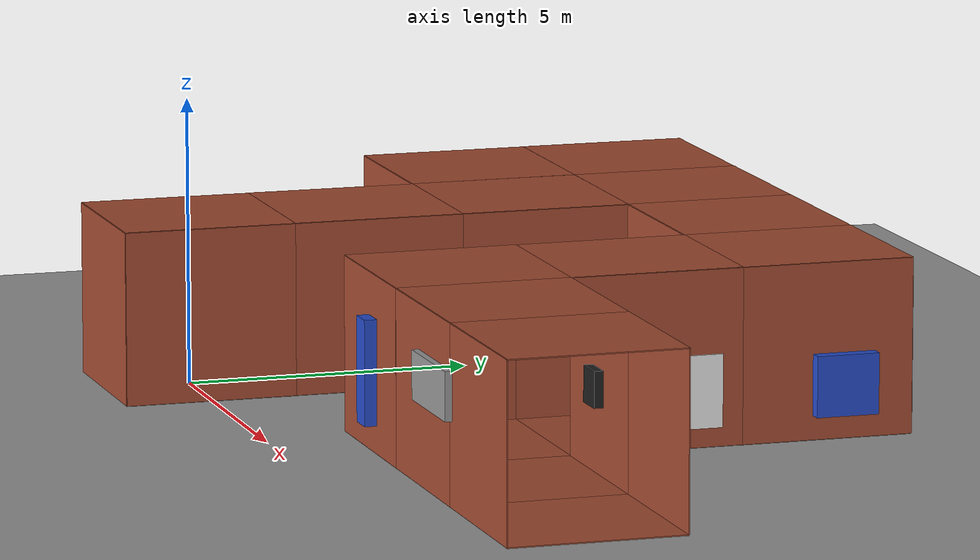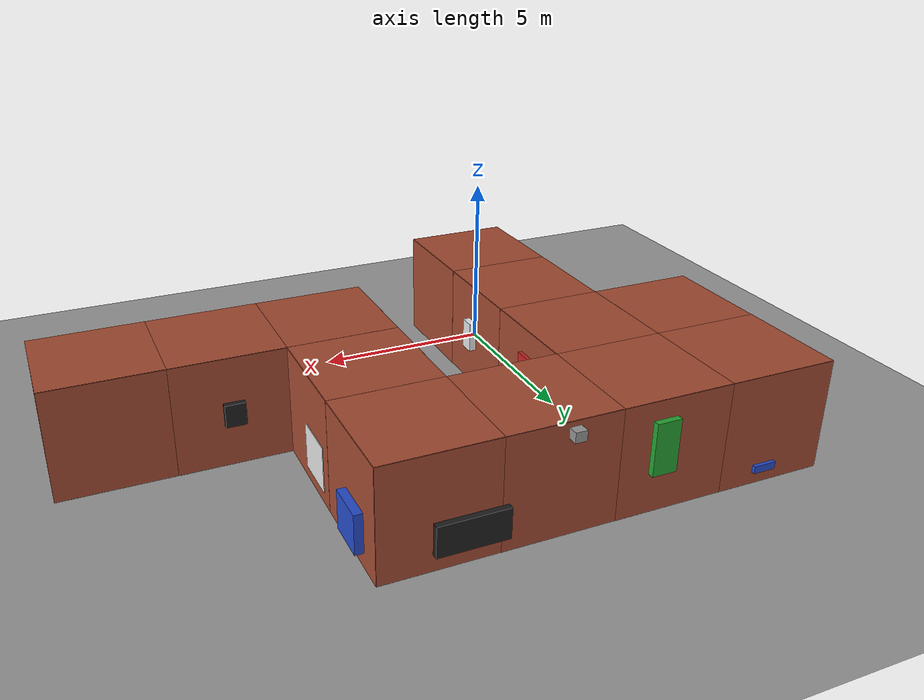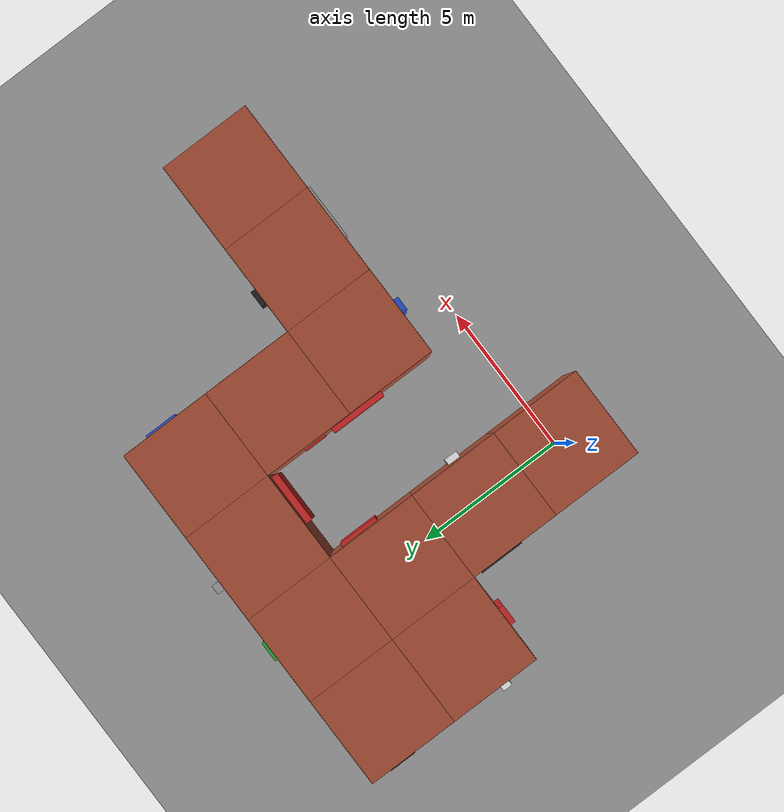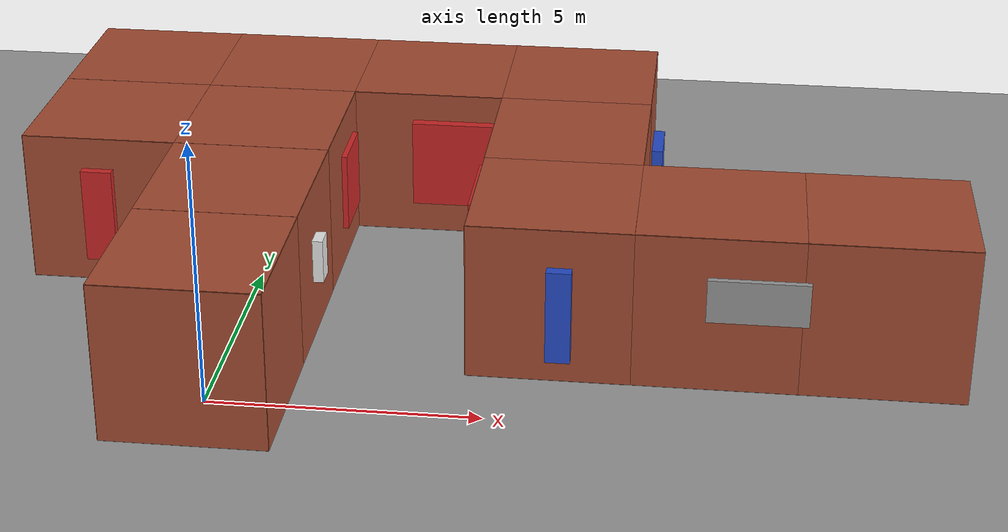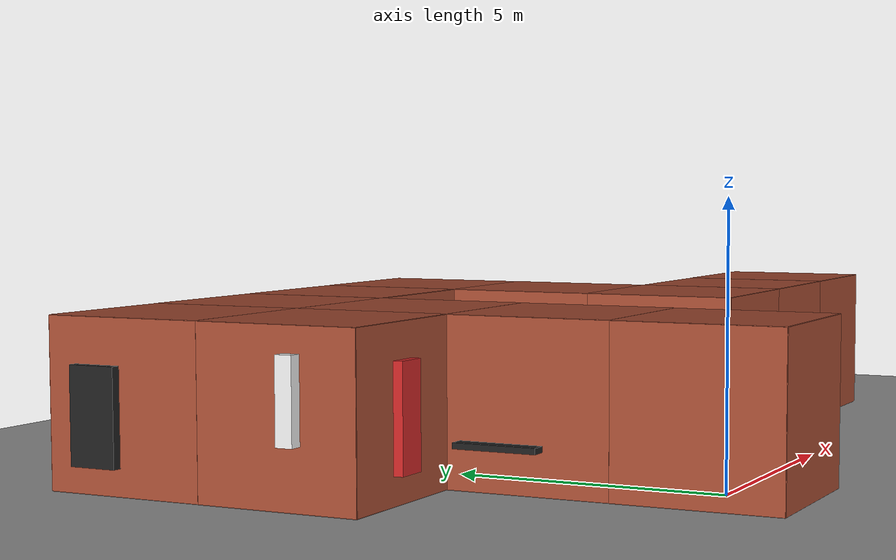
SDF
<?xml version='1.0' encoding='us-ascii'?>
<sdf version="1.6">
  <model name="corridor_brick">
    <model name="ground_plane">
      <static>1</static>
      <link name="link">
        <collision name="collision">
          <geometry>
            <plane>
              <normal>0 0 1</normal>
              <size>200 200</size>
            </plane>
          </geometry>
          <surface>
            <friction>
              <ode>
                <mu>100</mu>
                <mu2>50</mu2>
              </ode>
              <torsional>
                <ode />
              </torsional>
            </friction>
            <contact>
              <ode />
            </contact>
            <bounce />
          </surface>
          <max_contacts>10</max_contacts>
        </collision>
        <visual name="visual">
          <cast_shadows>0</cast_shadows>
          <geometry>
            <plane>
              <normal>0 0 1</normal>
              <size>200 200</size>
            </plane>
          </geometry>
          <material>
            <script>
              <uri>file://media/materials/scripts/gazebo.material</uri>
              <name>Gazebo/Grey</name>
            </script>
          </material>
        </visual>
        <self_collide>0</self_collide>
        <kinematic>0</kinematic>
      </link>
      <pose frame="">0 0 0 0 -0 0</pose>
    </model>
    <model name="wall_back_0_0_0_0">
      <static>1</static>
      <pose>0.0 -1.5 1.5 0.0 0.0 0.0</pose>
      <link name="link">
        <collision name="collision">
          <geometry>
            <box>
              <size>3 0.02 3</size>
            </box>
          </geometry>
        </collision>
        <visual name="visual">
          <material>
            <script>
              <name>Gazebo/Bricks</name>
              <uri>file://media/materials/scripts/gazebo.material</uri>
            </script>
          </material>
          <geometry>
            <box>
              <size>3 0.02 3</size>
            </box>
          </geometry>
        </visual>
      </link>
    </model>
    <model name="wall_right_0_0_0_0">
      <static>1</static>
      <pose>1.5 0.0 1.5 0.0 0.0 1.57</pose>
      <link name="link">
        <collision name="collision">
          <geometry>
            <box>
              <size>3 0.02 3</size>
            </box>
          </geometry>
        </collision>
        <visual name="visual">
          <material>
            <script>
              <name>Gazebo/Bricks</name>
              <uri>file://media/materials/scripts/gazebo.material</uri>
            </script>
          </material>
          <geometry>
            <box>
              <size>3 0.02 3</size>
            </box>
          </geometry>
        </visual>
      </link>
    </model>
    <model name="wall_left_0_0_0_0">
      <static>1</static>
      <pose>-1.5 0.0 1.5 0.0 0.0 1.57</pose>
      <link name="link">
        <collision name="collision">
          <geometry>
            <box>
              <size>3 0.02 3</size>
            </box>
          </geometry>
        </collision>
        <visual name="visual">
          <material>
            <script>
              <name>Gazebo/Bricks</name>
              <uri>file://media/materials/scripts/gazebo.material</uri>
            </script>
          </material>
          <geometry>
            <box>
              <size>3 0.02 3</size>
            </box>
          </geometry>
        </visual>
      </link>
    </model>
    <model name="wall_top_0_0_0_0">
      <static>1</static>
      <pose>0.0 0.0 3.0 1.57 0.0 0.0</pose>
      <link name="link">
        <collision name="collision">
          <geometry>
            <box>
              <size>3 0.02 3</size>
            </box>
          </geometry>
        </collision>
        <visual name="visual">
          <material>
            <script>
              <name>Gazebo/Bricks</name>
              <uri>file://media/materials/scripts/gazebo.material</uri>
            </script>
          </material>
          <geometry>
            <box>
              <size>3 0.02 3</size>
            </box>
          </geometry>
        </visual>
      </link>
    </model>
    <model name="wall_bottom_0_0_0_0">
      <static>1</static>
      <pose>0.0 0.0 0.0 1.57 0.0 0.0</pose>
      <link name="link">
        <collision name="collision">
          <geometry>
            <box>
              <size>3 0.02 3</size>
            </box>
          </geometry>
        </collision>
        <visual name="visual">
          <material>
            <script>
              <name>Gazebo/Bricks</name>
              <uri>file://media/materials/scripts/gazebo.material</uri>
            </script>
          </material>
          <geometry>
            <box>
              <size>3 0.02 3</size>
            </box>
          </geometry>
        </visual>
      </link>
    </model>
   <model name="wall_right_0_1_0_1">
      <static>1</static>
      <pose>1.5 3.0 1.5 0.0 0.0 1.57</pose>
      <link name="link">
        <collision name="collision">
          <geometry>
            <box>
              <size>3 0.02 3</size>
            </box>
          </geometry>
        </collision>
        <visual name="visual">
          <material>
            <script>
              <name>Gazebo/Bricks</name>
              <uri>file://media/materials/scripts/gazebo.material</uri>
            </script>
          </material>
          <geometry>
            <box>
              <size>3 0.02 3</size>
            </box>
          </geometry>
        </visual>
      </link>
    </model>
    <model name="wall_left_0_1_0_1">
      <static>1</static>
      <pose>-1.5 3.0 1.5 0.0 0.0 1.57</pose>
      <link name="link">
        <collision name="collision">
          <geometry>
            <box>
              <size>3 0.02 3</size>
            </box>
          </geometry>
        </collision>
        <visual name="visual">
          <material>
            <script>
              <name>Gazebo/Bricks</name>
              <uri>file://media/materials/scripts/gazebo.material</uri>
            </script>
          </material>
          <geometry>
            <box>
              <size>3 0.02 3</size>
            </box>
          </geometry>
        </visual>
      </link>
    </model>
    <model name="wall_top_0_1_0_1">
      <static>1</static>
      <pose>0.0 3.0 3.0 1.57 0.0 0.0</pose>
      <link name="link">
        <collision name="collision">
          <geometry>
            <box>
              <size>3 0.02 3</size>
            </box>
          </geometry>
        </collision>
        <visual name="visual">
          <material>
            <script>
              <name>Gazebo/Bricks</name>
              <uri>file://media/materials/scripts/gazebo.material</uri>
            </script>
          </material>
          <geometry>
            <box>
              <size>3 0.02 3</size>
            </box>
          </geometry>
        </visual>
      </link>
    </model>
    <model name="wall_bottom_0_1_0_1">
      <static>1</static>
      <pose>0.0 3.0 0.0 1.57 0.0 0.0</pose>
      <link name="link">
        <collision name="collision">
          <geometry>
            <box>
              <size>3 0.02 3</size>
            </box>
          </geometry>
        </collision>
        <visual name="visual">
          <material>
            <script>
              <name>Gazebo/Bricks</name>
              <uri>file://media/materials/scripts/gazebo.material</uri>
            </script>
          </material>
          <geometry>
            <box>
              <size>3 0.02 3</size>
            </box>
          </geometry>
        </visual>
      </link>
    </model>

    <model name="panel_0_1_0_1">
      <static>1</static>
      <pose>1.5 2.8671350726550893 1.5484221387 0.0 0.0 0.0</pose>
      <link name="link">
        <collision name="collision">
          <geometry>
            <box>
              <size>0.415689363648 0.426792073908 0.842799930097</size>
            </box>
          </geometry>
        </collision>
        <visual name="visual">
          <material>
            <script>
              <name>Gazebo/White</name>
              <uri>file://media/materials/scripts/gazebo.material</uri>
            </script>
          </material>
          <geometry>
            <box>
              <size>0.415689363648 0.426792073908 0.842799930097</size>
            </box>
          </geometry>
        </visual>
      </link>
    </model>
    <model name="panel_0_1_1_1">
      <static>1</static>
      <pose>-1.5 3.4685522239079156 0.808961138891 0.0 0.0 0.0</pose>
      <link name="link">
        <collision name="collision">
          <geometry>
            <box>
              <size>0.590159885197 1.53863954127 0.108758346877</size>
            </box>
          </geometry>
        </collision>
        <visual name="visual">
          <material>
            <script>
              <name>Gazebo/Black</name>
              <uri>file://media/materials/scripts/gazebo.material</uri>
            </script>
          </material>
          <geometry>
            <box>
              <size>0.590159885197 1.53863954127 0.108758346877</size>
            </box>
          </geometry>
        </visual>
      </link>
    </model>
    <model name="wall_front_0_2_0_3">
      <static>1</static>
      <pose>0.0 7.5 1.5 0.0 0.0 0.0</pose>
      <link name="link">
        <collision name="collision">
          <geometry>
            <box>
              <size>3 0.02 3</size>
            </box>
          </geometry>
        </collision>
        <visual name="visual">
          <material>
            <script>
              <name>Gazebo/Bricks</name>
              <uri>file://media/materials/scripts/gazebo.material</uri>
            </script>
          </material>
          <geometry>
            <box>
              <size>3 0.02 3</size>
            </box>
          </geometry>
        </visual>
      </link>
    </model>
    <model name="wall_right_0_2_0_3">
      <static>1</static>
      <pose>1.5 6.0 1.5 0.0 0.0 1.57</pose>
      <link name="link">
        <collision name="collision">
          <geometry>
            <box>
              <size>3 0.02 3</size>
            </box>
          </geometry>
        </collision>
        <visual name="visual">
          <material>
            <script>
              <name>Gazebo/Bricks</name>
              <uri>file://media/materials/scripts/gazebo.material</uri>
            </script>
          </material>
          <geometry>
            <box>
              <size>3 0.02 3</size>
            </box>
          </geometry>
        </visual>
      </link>
    </model>
    <model name="wall_top_0_2_0_3">
      <static>1</static>
      <pose>0.0 6.0 3.0 1.57 0.0 0.0</pose>
      <link name="link">
        <collision name="collision">
          <geometry>
            <box>
              <size>3 0.02 3</size>
            </box>
          </geometry>
        </collision>
        <visual name="visual">
          <material>
            <script>
              <name>Gazebo/Bricks</name>
              <uri>file://media/materials/scripts/gazebo.material</uri>
            </script>
          </material>
          <geometry>
            <box>
              <size>3 0.02 3</size>
            </box>
          </geometry>
        </visual>
      </link>
    </model>
    <model name="wall_bottom_0_2_0_3">
      <static>1</static>
      <pose>0.0 6.0 0.0 1.57 0.0 0.0</pose>
      <link name="link">
        <collision name="collision">
          <geometry>
            <box>
              <size>3 0.02 3</size>
            </box>
          </geometry>
        </collision>
        <visual name="visual">
          <material>
            <script>
              <name>Gazebo/Bricks</name>
              <uri>file://media/materials/scripts/gazebo.material</uri>
            </script>
          </material>
          <geometry>
            <box>
              <size>3 0.02 3</size>
            </box>
          </geometry>
        </visual>
      </link>
    </model>

    <model name="panel_0_2_0_3">
      <static>1</static>
      <pose>1.5 6.418408961633796 1.53170365678 0.0 0.0 0.0</pose>
      <link name="link">
        <collision name="collision">
          <geometry>
            <box>
              <size>0.235176388155 1.29699282495 1.54614043667</size>
            </box>
          </geometry>
        </collision>
        <visual name="visual">
          <material>
            <script>
              <name>Gazebo/Red</name>
              <uri>file://media/materials/scripts/gazebo.material</uri>
            </script>
          </material>
          <geometry>
            <box>
              <size>0.235176388155 1.29699282495 1.54614043667</size>
            </box>
          </geometry>
        </visual>
      </link>
    </model>
    <model name="panel_0_2_1_3">
      <static>1</static>
      <pose>0.33774500608452995 7.5 1.64292034051 0.0 0.0 1.57</pose>
      <link name="link">
        <collision name="collision">
          <geometry>
            <box>
              <size>0.460967644011 1.34549283698 1.78301975523</size>
            </box>
          </geometry>
        </collision>
        <visual name="visual">
          <material>
            <script>
              <name>Gazebo/Blue</name>
              <uri>file://media/materials/scripts/gazebo.material</uri>
            </script>
          </material>
          <geometry>
            <box>
              <size>0.460967644011 1.34549283698 1.78301975523</size>
            </box>
          </geometry>
        </visual>
      </link>
    </model>
    <model name="wall_front_-1_2_0_2">
      <static>1</static>
      <pose>-4.5 6.0 1.5 0.0 0.0 1.57</pose>
      <link name="link">
        <collision name="collision">
          <geometry>
            <box>
              <size>3 0.02 3</size>
            </box>
          </geometry>
        </collision>
        <visual name="visual">
          <material>
            <script>
              <name>Gazebo/Bricks</name>
              <uri>file://media/materials/scripts/gazebo.material</uri>
            </script>
          </material>
          <geometry>
            <box>
              <size>3 0.02 3</size>
            </box>
          </geometry>
        </visual>
      </link>
    </model>
    <model name="wall_left_-1_2_0_2">
      <static>1</static>
      <pose>-3.0 4.5 1.5 0.0 0.0 3.14</pose>
      <link name="link">
        <collision name="collision">
          <geometry>
            <box>
              <size>3 0.02 3</size>
            </box>
          </geometry>
        </collision>
        <visual name="visual">
          <material>
            <script>
              <name>Gazebo/Bricks</name>
              <uri>file://media/materials/scripts/gazebo.material</uri>
            </script>
          </material>
          <geometry>
            <box>
              <size>3 0.02 3</size>
            </box>
          </geometry>
        </visual>
      </link>
    </model>
    <model name="wall_top_-1_2_0_2">
      <static>1</static>
      <pose>-3.0 6.0 3.0 1.57 0.0 1.57</pose>
      <link name="link">
        <collision name="collision">
          <geometry>
            <box>
              <size>3 0.02 3</size>
            </box>
          </geometry>
        </collision>
        <visual name="visual">
          <material>
            <script>
              <name>Gazebo/Bricks</name>
              <uri>file://media/materials/scripts/gazebo.material</uri>
            </script>
          </material>
          <geometry>
            <box>
              <size>3 0.02 3</size>
            </box>
          </geometry>
        </visual>
      </link>
    </model>
    <model name="wall_bottom_-1_2_0_2">
      <static>1</static>
      <pose>-3.0 6.0 0.0 1.57 0.0 1.57</pose>
      <link name="link">
        <collision name="collision">
          <geometry>
            <box>
              <size>3 0.02 3</size>
            </box>
          </geometry>
        </collision>
        <visual name="visual">
          <material>
            <script>
              <name>Gazebo/Bricks</name>
              <uri>file://media/materials/scripts/gazebo.material</uri>
            </script>
          </material>
          <geometry>
            <box>
              <size>3 0.02 3</size>
            </box>
          </geometry>
        </visual>
      </link>
    </model>

    <model name="panel_-1_2_0_2">
      <static>1</static>
      <pose>-3.0479846219671565 4.5 1.44122176253 0.0 0.0 1.57</pose>
      <link name="link">
        <collision name="collision">
          <geometry>
            <box>
              <size>0.367330165758 0.607264798004 1.87686686716</size>
            </box>
          </geometry>
        </collision>
        <visual name="visual">
          <material>
            <script>
              <name>Gazebo/Red</name>
              <uri>file://media/materials/scripts/gazebo.material</uri>
            </script>
          </material>
          <geometry>
            <box>
              <size>0.367330165758 0.607264798004 1.87686686716</size>
            </box>
          </geometry>
        </visual>
      </link>
    </model>
    <model name="panel_-1_2_1_2">
      <static>1</static>
      <pose>-4.5 5.680250951045348 1.80864815322 0.0 0.0 3.14</pose>
      <link name="link">
        <collision name="collision">
          <geometry>
            <box>
              <size>0.498408862339 0.308606344313 1.478512287</size>
            </box>
          </geometry>
        </collision>
        <visual name="visual">
          <material>
            <script>
              <name>Gazebo/White</name>
              <uri>file://media/materials/scripts/gazebo.material</uri>
            </script>
          </material>
          <geometry>
            <box>
              <size>0.498408862339 0.308606344313 1.478512287</size>
            </box>
          </geometry>
        </visual>
      </link>
    </model>
    <model name="wall_front_-1_3_0_2">
      <static>1</static>
      <pose>-3.0 10.5 1.5 0.0 0.0 0.0</pose>
      <link name="link">
        <collision name="collision">
          <geometry>
            <box>
              <size>3 0.02 3</size>
            </box>
          </geometry>
        </collision>
        <visual name="visual">
          <material>
            <script>
              <name>Gazebo/Bricks</name>
              <uri>file://media/materials/scripts/gazebo.material</uri>
            </script>
          </material>
          <geometry>
            <box>
              <size>3 0.02 3</size>
            </box>
          </geometry>
        </visual>
      </link>
    </model>
    <model name="wall_left_-1_3_0_2">
      <static>1</static>
      <pose>-4.5 9.0 1.5 0.0 0.0 1.57</pose>
      <link name="link">
        <collision name="collision">
          <geometry>
            <box>
              <size>3 0.02 3</size>
            </box>
          </geometry>
        </collision>
        <visual name="visual">
          <material>
            <script>
              <name>Gazebo/Bricks</name>
              <uri>file://media/materials/scripts/gazebo.material</uri>
            </script>
          </material>
          <geometry>
            <box>
              <size>3 0.02 3</size>
            </box>
          </geometry>
        </visual>
      </link>
    </model>
    <model name="wall_top_-1_3_0_2">
      <static>1</static>
      <pose>-3.0 9.0 3.0 1.57 0.0 0.0</pose>
      <link name="link">
        <collision name="collision">
          <geometry>
            <box>
              <size>3 0.02 3</size>
            </box>
          </geometry>
        </collision>
        <visual name="visual">
          <material>
            <script>
              <name>Gazebo/Bricks</name>
              <uri>file://media/materials/scripts/gazebo.material</uri>
            </script>
          </material>
          <geometry>
            <box>
              <size>3 0.02 3</size>
            </box>
          </geometry>
        </visual>
      </link>
    </model>
    <model name="wall_bottom_-1_3_0_2">
      <static>1</static>
      <pose>-3.0 9.0 0.0 1.57 0.0 0.0</pose>
      <link name="link">
        <collision name="collision">
          <geometry>
            <box>
              <size>3 0.02 3</size>
            </box>
          </geometry>
        </collision>
        <visual name="visual">
          <material>
            <script>
              <name>Gazebo/Bricks</name>
              <uri>file://media/materials/scripts/gazebo.material</uri>
            </script>
          </material>
          <geometry>
            <box>
              <size>3 0.02 3</size>
            </box>
          </geometry>
        </visual>
      </link>
    </model>

    <model name="panel_-1_3_0_2">
      <static>1</static>
      <pose>-4.5 9.499842819543245 1.3374829175 0.0 0.0 0.0</pose>
      <link name="link">
        <collision name="collision">
          <geometry>
            <box>
              <size>0.367530496215 0.890218201839 1.72396044338</size>
            </box>
          </geometry>
        </collision>
        <visual name="visual">
          <material>
            <script>
              <name>Gazebo/Black</name>
              <uri>file://media/materials/scripts/gazebo.material</uri>
            </script>
          </material>
          <geometry>
            <box>
              <size>0.367530496215 0.890218201839 1.72396044338</size>
            </box>
          </geometry>
        </visual>
      </link>
    </model>
    <model name="panel_-1_3_1_2">
      <static>1</static>
      <pose>-2.7649266689760625 10.5 0.436052268399 0.0 0.0 1.57</pose>
      <link name="link">
        <collision name="collision">
          <geometry>
            <box>
              <size>0.220302014913 0.623552310386 0.200254069027</size>
            </box>
          </geometry>
        </collision>
        <visual name="visual">
          <material>
            <script>
              <name>Gazebo/Blue</name>
              <uri>file://media/materials/scripts/gazebo.material</uri>
            </script>
          </material>
          <geometry>
            <box>
              <size>0.220302014913 0.623552310386 0.200254069027</size>
            </box>
          </geometry>
        </visual>
      </link>
    </model>
    <model name="wall_right_0_3_0_1">
      <static>1</static>
      <pose>0.0 7.5 1.5 0.0 0.0 0.0</pose>
      <link name="link">
        <collision name="collision">
          <geometry>
            <box>
              <size>3 0.02 3</size>
            </box>
          </geometry>
        </collision>
        <visual name="visual">
          <material>
            <script>
              <name>Gazebo/Bricks</name>
              <uri>file://media/materials/scripts/gazebo.material</uri>
            </script>
          </material>
          <geometry>
            <box>
              <size>3 0.02 3</size>
            </box>
          </geometry>
        </visual>
      </link>
    </model>
    <model name="wall_left_0_3_0_1">
      <static>1</static>
      <pose>0.0 10.5 1.5 0.0 0.0 0.0</pose>
      <link name="link">
        <collision name="collision">
          <geometry>
            <box>
              <size>3 0.02 3</size>
            </box>
          </geometry>
        </collision>
        <visual name="visual">
          <material>
            <script>
              <name>Gazebo/Bricks</name>
              <uri>file://media/materials/scripts/gazebo.material</uri>
            </script>
          </material>
          <geometry>
            <box>
              <size>3 0.02 3</size>
            </box>
          </geometry>
        </visual>
      </link>
    </model>
    <model name="wall_top_0_3_0_1">
      <static>1</static>
      <pose>0.0 9.0 3.0 1.57 0.0 -1.57</pose>
      <link name="link">
        <collision name="collision">
          <geometry>
            <box>
              <size>3 0.02 3</size>
            </box>
          </geometry>
        </collision>
        <visual name="visual">
          <material>
            <script>
              <name>Gazebo/Bricks</name>
              <uri>file://media/materials/scripts/gazebo.material</uri>
            </script>
          </material>
          <geometry>
            <box>
              <size>3 0.02 3</size>
            </box>
          </geometry>
        </visual>
      </link>
    </model>
    <model name="wall_bottom_0_3_0_1">
      <static>1</static>
      <pose>0.0 9.0 0.0 1.57 0.0 -1.57</pose>
      <link name="link">
        <collision name="collision">
          <geometry>
            <box>
              <size>3 0.02 3</size>
            </box>
          </geometry>
        </collision>
        <visual name="visual">
          <material>
            <script>
              <name>Gazebo/Bricks</name>
              <uri>file://media/materials/scripts/gazebo.material</uri>
            </script>
          </material>
          <geometry>
            <box>
              <size>3 0.02 3</size>
            </box>
          </geometry>
        </visual>
      </link>
    </model>

    <model name="panel_0_3_0_1">
      <static>1</static>
      <pose>0.34647391419340257 10.5 1.7957974928 0.0 0.0 -1.57</pose>
      <link name="link">
        <collision name="collision">
          <geometry>
            <box>
              <size>0.343406116254 0.666554193322 1.41140001616</size>
            </box>
          </geometry>
        </collision>
        <visual name="visual">
          <material>
            <script>
              <name>Gazebo/Green</name>
              <uri>file://media/materials/scripts/gazebo.material</uri>
            </script>
          </material>
          <geometry>
            <box>
              <size>0.343406116254 0.666554193322 1.41140001616</size>
            </box>
          </geometry>
        </visual>
      </link>
    </model>
    <model name="panel_0_3_1_1">
      <static>1</static>
      <pose>-0.6372993519338499 7.5 1.71678139878 0.0 0.0 -1.57</pose>
      <link name="link">
        <collision name="collision">
          <geometry>
            <box>
              <size>0.270207974439 1.48868965429 1.66701242495</size>
            </box>
          </geometry>
        </collision>
        <visual name="visual">
          <material>
            <script>
              <name>Gazebo/Black</name>
              <uri>file://media/materials/scripts/gazebo.material</uri>
            </script>
          </material>
          <geometry>
            <box>
              <size>0.270207974439 1.48868965429 1.66701242495</size>
            </box>
          </geometry>
        </visual>
      </link>
    </model>
    <model name="wall_right_1_3_0_1">
      <static>1</static>
      <pose>3.0 7.5 1.5 0.0 0.0 0.0</pose>
      <link name="link">
        <collision name="collision">
          <geometry>
            <box>
              <size>3 0.02 3</size>
            </box>
          </geometry>
        </collision>
        <visual name="visual">
          <material>
            <script>
              <name>Gazebo/Bricks</name>
              <uri>file://media/materials/scripts/gazebo.material</uri>
            </script>
          </material>
          <geometry>
            <box>
              <size>3 0.02 3</size>
            </box>
          </geometry>
        </visual>
      </link>
    </model>
    <model name="wall_left_1_3_0_1">
      <static>1</static>
      <pose>3.0 10.5 1.5 0.0 0.0 0.0</pose>
      <link name="link">
        <collision name="collision">
          <geometry>
            <box>
              <size>3 0.02 3</size>
            </box>
          </geometry>
        </collision>
        <visual name="visual">
          <material>
            <script>
              <name>Gazebo/Bricks</name>
              <uri>file://media/materials/scripts/gazebo.material</uri>
            </script>
          </material>
          <geometry>
            <box>
              <size>3 0.02 3</size>
            </box>
          </geometry>
        </visual>
      </link>
    </model>
    <model name="wall_top_1_3_0_1">
      <static>1</static>
      <pose>3.0 9.0 3.0 1.57 0.0 -1.57</pose>
      <link name="link">
        <collision name="collision">
          <geometry>
            <box>
              <size>3 0.02 3</size>
            </box>
          </geometry>
        </collision>
        <visual name="visual">
          <material>
            <script>
              <name>Gazebo/Bricks</name>
              <uri>file://media/materials/scripts/gazebo.material</uri>
            </script>
          </material>
          <geometry>
            <box>
              <size>3 0.02 3</size>
            </box>
          </geometry>
        </visual>
      </link>
    </model>
    <model name="wall_bottom_1_3_0_1">
      <static>1</static>
      <pose>3.0 9.0 0.0 1.57 0.0 -1.57</pose>
      <link name="link">
        <collision name="collision">
          <geometry>
            <box>
              <size>3 0.02 3</size>
            </box>
          </geometry>
        </collision>
        <visual name="visual">
          <material>
            <script>
              <name>Gazebo/Bricks</name>
              <uri>file://media/materials/scripts/gazebo.material</uri>
            </script>
          </material>
          <geometry>
            <box>
              <size>3 0.02 3</size>
            </box>
          </geometry>
        </visual>
      </link>
    </model>

    <model name="panel_1_3_0_1">
      <static>1</static>
      <pose>2.7710383536278433 10.5 2.73336931554 0.0 0.0 -1.57</pose>
      <link name="link">
        <collision name="collision">
          <geometry>
            <box>
              <size>0.537333116307 0.305933362324 0.268217029908</size>
            </box>
          </geometry>
        </collision>
        <visual name="visual">
          <material>
            <script>
              <name>Gazebo/Grey</name>
              <uri>file://media/materials/scripts/gazebo.material</uri>
            </script>
          </material>
          <geometry>
            <box>
              <size>0.537333116307 0.305933362324 0.268217029908</size>
            </box>
          </geometry>
        </visual>
      </link>
    </model>
    <model name="panel_1_3_1_1">
      <static>1</static>
      <pose>3.5524882198446375 7.5 1.56739063644 0.0 0.0 -1.57</pose>
      <link name="link">
        <collision name="collision">
          <geometry>
            <box>
              <size>0.455809712901 1.70817903171 1.76640940089</size>
            </box>
          </geometry>
        </collision>
        <visual name="visual">
          <material>
            <script>
              <name>Gazebo/Red</name>
              <uri>file://media/materials/scripts/gazebo.material</uri>
            </script>
          </material>
          <geometry>
            <box>
              <size>0.455809712901 1.70817903171 1.76640940089</size>
            </box>
          </geometry>
        </visual>
      </link>
    </model>
    <model name="wall_front_2_3_0_2">
      <static>1</static>
      <pose>7.5 9.0 1.5 0.0 0.0 -1.57</pose>
      <link name="link">
        <collision name="collision">
          <geometry>
            <box>
              <size>3 0.02 3</size>
            </box>
          </geometry>
        </collision>
        <visual name="visual">
          <material>
            <script>
              <name>Gazebo/Bricks</name>
              <uri>file://media/materials/scripts/gazebo.material</uri>
            </script>
          </material>
          <geometry>
            <box>
              <size>3 0.02 3</size>
            </box>
          </geometry>
        </visual>
      </link>
    </model>
    <model name="wall_left_2_3_0_2">
      <static>1</static>
      <pose>6.0 10.5 1.5 0.0 0.0 0.0</pose>
      <link name="link">
        <collision name="collision">
          <geometry>
            <box>
              <size>3 0.02 3</size>
            </box>
          </geometry>
        </collision>
        <visual name="visual">
          <material>
            <script>
              <name>Gazebo/Bricks</name>
              <uri>file://media/materials/scripts/gazebo.material</uri>
            </script>
          </material>
          <geometry>
            <box>
              <size>3 0.02 3</size>
            </box>
          </geometry>
        </visual>
      </link>
    </model>
    <model name="wall_top_2_3_0_2">
      <static>1</static>
      <pose>6.0 9.0 3.0 1.57 0.0 -1.57</pose>
      <link name="link">
        <collision name="collision">
          <geometry>
            <box>
              <size>3 0.02 3</size>
            </box>
          </geometry>
        </collision>
        <visual name="visual">
          <material>
            <script>
              <name>Gazebo/Bricks</name>
              <uri>file://media/materials/scripts/gazebo.material</uri>
            </script>
          </material>
          <geometry>
            <box>
              <size>3 0.02 3</size>
            </box>
          </geometry>
        </visual>
      </link>
    </model>
    <model name="wall_bottom_2_3_0_2">
      <static>1</static>
      <pose>6.0 9.0 0.0 1.57 0.0 -1.57</pose>
      <link name="link">
        <collision name="collision">
          <geometry>
            <box>
              <size>3 0.02 3</size>
            </box>
          </geometry>
        </collision>
        <visual name="visual">
          <material>
            <script>
              <name>Gazebo/Bricks</name>
              <uri>file://media/materials/scripts/gazebo.material</uri>
            </script>
          </material>
          <geometry>
            <box>
              <size>3 0.02 3</size>
            </box>
          </geometry>
        </visual>
      </link>
    </model>

    <model name="panel_2_3_0_2">
      <static>1</static>
      <pose>5.258130276654664 10.5 0.857798916135 0.0 0.0 -1.57</pose>
      <link name="link">
        <collision name="collision">
          <geometry>
            <box>
              <size>0.356716633855 1.83586360926 0.820691298275</size>
            </box>
          </geometry>
        </collision>
        <visual name="visual">
          <material>
            <script>
              <name>Gazebo/Black</name>
              <uri>file://media/materials/scripts/gazebo.material</uri>
            </script>
          </material>
          <geometry>
            <box>
              <size>0.356716633855 1.83586360926 0.820691298275</size>
            </box>
          </geometry>
        </visual>
      </link>
    </model>
    <model name="panel_2_3_1_2">
      <static>1</static>
      <pose>7.5 9.284315803690442 0.938739517263 0.0 0.0 0.0</pose>
      <link name="link">
        <collision name="collision">
          <geometry>
            <box>
              <size>0.472873181322 1.09309210856 1.04605298846</size>
            </box>
          </geometry>
        </collision>
        <visual name="visual">
          <material>
            <script>
              <name>Gazebo/Blue</name>
              <uri>file://media/materials/scripts/gazebo.material</uri>
            </script>
          </material>
          <geometry>
            <box>
              <size>0.472873181322 1.09309210856 1.04605298846</size>
            </box>
          </geometry>
        </visual>
      </link>
    </model>
    <model name="wall_right_2_2_0_1">
      <static>1</static>
      <pose>4.5 6.0 1.5 0.0 0.0 4.71</pose>
      <link name="link">
        <collision name="collision">
          <geometry>
            <box>
              <size>3 0.02 3</size>
            </box>
          </geometry>
        </collision>
        <visual name="visual">
          <material>
            <script>
              <name>Gazebo/Bricks</name>
              <uri>file://media/materials/scripts/gazebo.material</uri>
            </script>
          </material>
          <geometry>
            <box>
              <size>3 0.02 3</size>
            </box>
          </geometry>
        </visual>
      </link>
    </model>
    <model name="wall_left_2_2_0_1">
      <static>1</static>
      <pose>7.5 6.0 1.5 0.0 0.0 4.71</pose>
      <link name="link">
        <collision name="collision">
          <geometry>
            <box>
              <size>3 0.02 3</size>
            </box>
          </geometry>
        </collision>
        <visual name="visual">
          <material>
            <script>
              <name>Gazebo/Bricks</name>
              <uri>file://media/materials/scripts/gazebo.material</uri>
            </script>
          </material>
          <geometry>
            <box>
              <size>3 0.02 3</size>
            </box>
          </geometry>
        </visual>
      </link>
    </model>
    <model name="wall_top_2_2_0_1">
      <static>1</static>
      <pose>6.0 6.0 3.0 1.57 0.0 3.14</pose>
      <link name="link">
        <collision name="collision">
          <geometry>
            <box>
              <size>3 0.02 3</size>
            </box>
          </geometry>
        </collision>
        <visual name="visual">
          <material>
            <script>
              <name>Gazebo/Bricks</name>
              <uri>file://media/materials/scripts/gazebo.material</uri>
            </script>
          </material>
          <geometry>
            <box>
              <size>3 0.02 3</size>
            </box>
          </geometry>
        </visual>
      </link>
    </model>
    <model name="wall_bottom_2_2_0_1">
      <static>1</static>
      <pose>6.0 6.0 0.0 1.57 0.0 3.14</pose>
      <link name="link">
        <collision name="collision">
          <geometry>
            <box>
              <size>3 0.02 3</size>
            </box>
          </geometry>
        </collision>
        <visual name="visual">
          <material>
            <script>
              <name>Gazebo/Bricks</name>
              <uri>file://media/materials/scripts/gazebo.material</uri>
            </script>
          </material>
          <geometry>
            <box>
              <size>3 0.02 3</size>
            </box>
          </geometry>
        </visual>
      </link>
    </model>

    <model name="panel_2_2_0_1">
      <static>1</static>
      <pose>7.5 6.494906945214098 0.944421797623 0.0 0.0 3.14</pose>
      <link name="link">
        <collision name="collision">
          <geometry>
            <box>
              <size>0.0633401609939 1.30038466356 1.24788885284</size>
            </box>
          </geometry>
        </collision>
        <visual name="visual">
          <material>
            <script>
              <name>Gazebo/White</name>
              <uri>file://media/materials/scripts/gazebo.material</uri>
            </script>
          </material>
          <geometry>
            <box>
              <size>0.0633401609939 1.30038466356 1.24788885284</size>
            </box>
          </geometry>
        </visual>
      </link>
    </model>
    <model name="panel_2_2_1_1">
      <static>1</static>
      <pose>4.5 5.880608981064352 0.969654958835 0.0 0.0 3.14</pose>
      <link name="link">
        <collision name="collision">
          <geometry>
            <box>
              <size>0.112942070341 0.764178566823 0.858728580016</size>
            </box>
          </geometry>
        </collision>
        <visual name="visual">
          <material>
            <script>
              <name>Gazebo/Red</name>
              <uri>file://media/materials/scripts/gazebo.material</uri>
            </script>
          </material>
          <geometry>
            <box>
              <size>0.112942070341 0.764178566823 0.858728580016</size>
            </box>
          </geometry>
        </visual>
      </link>
    </model>
    <model name="wall_front_2_1_0_3">
      <static>1</static>
      <pose>6.0 1.5 1.5 0.0 0.0 3.14</pose>
      <link name="link">
        <collision name="collision">
          <geometry>
            <box>
              <size>3 0.02 3</size>
            </box>
          </geometry>
        </collision>
        <visual name="visual">
          <material>
            <script>
              <name>Gazebo/Bricks</name>
              <uri>file://media/materials/scripts/gazebo.material</uri>
            </script>
          </material>
          <geometry>
            <box>
              <size>3 0.02 3</size>
            </box>
          </geometry>
        </visual>
      </link>
    </model>
    <model name="wall_right_2_1_0_3">
      <static>1</static>
      <pose>4.5 3.0 1.5 0.0 0.0 4.71</pose>
      <link name="link">
        <collision name="collision">
          <geometry>
            <box>
              <size>3 0.02 3</size>
            </box>
          </geometry>
        </collision>
        <visual name="visual">
          <material>
            <script>
              <name>Gazebo/Bricks</name>
              <uri>file://media/materials/scripts/gazebo.material</uri>
            </script>
          </material>
          <geometry>
            <box>
              <size>3 0.02 3</size>
            </box>
          </geometry>
        </visual>
      </link>
    </model>
    <model name="wall_top_2_1_0_3">
      <static>1</static>
      <pose>6.0 3.0 3.0 1.57 0.0 3.14</pose>
      <link name="link">
        <collision name="collision">
          <geometry>
            <box>
              <size>3 0.02 3</size>
            </box>
          </geometry>
        </collision>
        <visual name="visual">
          <material>
            <script>
              <name>Gazebo/Bricks</name>
              <uri>file://media/materials/scripts/gazebo.material</uri>
            </script>
          </material>
          <geometry>
            <box>
              <size>3 0.02 3</size>
            </box>
          </geometry>
        </visual>
      </link>
    </model>
    <model name="wall_bottom_2_1_0_3">
      <static>1</static>
      <pose>6.0 3.0 0.0 1.57 0.0 3.14</pose>
      <link name="link">
        <collision name="collision">
          <geometry>
            <box>
              <size>3 0.02 3</size>
            </box>
          </geometry>
        </collision>
        <visual name="visual">
          <material>
            <script>
              <name>Gazebo/Bricks</name>
              <uri>file://media/materials/scripts/gazebo.material</uri>
            </script>
          </material>
          <geometry>
            <box>
              <size>3 0.02 3</size>
            </box>
          </geometry>
        </visual>
      </link>
    </model>

    <model name="panel_2_1_0_3">
      <static>1</static>
      <pose>6.189568417529141 1.5 1.3770964516 0.0 0.0 4.71</pose>
      <link name="link">
        <collision name="collision">
          <geometry>
            <box>
              <size>0.453024798411 0.456175775784 1.79634343927</size>
            </box>
          </geometry>
        </collision>
        <visual name="visual">
          <material>
            <script>
              <name>Gazebo/Blue</name>
              <uri>file://media/materials/scripts/gazebo.material</uri>
            </script>
          </material>
          <geometry>
            <box>
              <size>0.453024798411 0.456175775784 1.79634343927</size>
            </box>
          </geometry>
        </visual>
      </link>
    </model>
    <model name="panel_2_1_1_3">
      <static>1</static>
      <pose>4.5 4.287549557402839 2.16737664865 0.0 0.0 3.14</pose>
      <link name="link">
        <collision name="collision">
          <geometry>
            <box>
              <size>0.360991905912 1.82825823036 0.73148357379</size>
            </box>
          </geometry>
        </collision>
        <visual name="visual">
          <material>
            <script>
              <name>Gazebo/Red</name>
              <uri>file://media/materials/scripts/gazebo.material</uri>
            </script>
          </material>
          <geometry>
            <box>
              <size>0.360991905912 1.82825823036 0.73148357379</size>
            </box>
          </geometry>
        </visual>
      </link>
    </model>
    <model name="wall_right_3_1_0_1">
      <static>1</static>
      <pose>9.0 1.5 1.5 0.0 0.0 0.0</pose>
      <link name="link">
        <collision name="collision">
          <geometry>
            <box>
              <size>3 0.02 3</size>
            </box>
          </geometry>
        </collision>
        <visual name="visual">
          <material>
            <script>
              <name>Gazebo/Bricks</name>
              <uri>file://media/materials/scripts/gazebo.material</uri>
            </script>
          </material>
          <geometry>
            <box>
              <size>3 0.02 3</size>
            </box>
          </geometry>
        </visual>
      </link>
    </model>
    <model name="wall_left_3_1_0_1">
      <static>1</static>
      <pose>9.0 4.5 1.5 0.0 0.0 0.0</pose>
      <link name="link">
        <collision name="collision">
          <geometry>
            <box>
              <size>3 0.02 3</size>
            </box>
          </geometry>
        </collision>
        <visual name="visual">
          <material>
            <script>
              <name>Gazebo/Bricks</name>
              <uri>file://media/materials/scripts/gazebo.material</uri>
            </script>
          </material>
          <geometry>
            <box>
              <size>3 0.02 3</size>
            </box>
          </geometry>
        </visual>
      </link>
    </model>
    <model name="wall_top_3_1_0_1">
      <static>1</static>
      <pose>9.0 3.0 3.0 1.57 0.0 -1.57</pose>
      <link name="link">
        <collision name="collision">
          <geometry>
            <box>
              <size>3 0.02 3</size>
            </box>
          </geometry>
        </collision>
        <visual name="visual">
          <material>
            <script>
              <name>Gazebo/Bricks</name>
              <uri>file://media/materials/scripts/gazebo.material</uri>
            </script>
          </material>
          <geometry>
            <box>
              <size>3 0.02 3</size>
            </box>
          </geometry>
        </visual>
      </link>
    </model>
    <model name="wall_bottom_3_1_0_1">
      <static>1</static>
      <pose>9.0 3.0 0.0 1.57 0.0 -1.57</pose>
      <link name="link">
        <collision name="collision">
          <geometry>
            <box>
              <size>3 0.02 3</size>
            </box>
          </geometry>
        </collision>
        <visual name="visual">
          <material>
            <script>
              <name>Gazebo/Bricks</name>
              <uri>file://media/materials/scripts/gazebo.material</uri>
            </script>
          </material>
          <geometry>
            <box>
              <size>3 0.02 3</size>
            </box>
          </geometry>
        </visual>
      </link>
    </model>

    <model name="panel_3_1_0_1">
      <static>1</static>
      <pose>8.954899318229074 4.5 1.47653851636 0.0 0.0 -1.57</pose>
      <link name="link">
        <collision name="collision">
          <geometry>
            <box>
              <size>0.341806656284 0.547016531948 0.618415238418</size>
            </box>
          </geometry>
        </collision>
        <visual name="visual">
          <material>
            <script>
              <name>Gazebo/Black</name>
              <uri>file://media/materials/scripts/gazebo.material</uri>
            </script>
          </material>
          <geometry>
            <box>
              <size>0.341806656284 0.547016531948 0.618415238418</size>
            </box>
          </geometry>
        </visual>
      </link>
    </model>
    <model name="panel_3_1_1_1">
      <static>1</static>
      <pose>9.704885160022469 1.5 1.83382121892 0.0 0.0 -1.57</pose>
      <link name="link">
        <collision name="collision">
          <geometry>
            <box>
              <size>0.257484609029 1.82082743823 0.822119668206</size>
            </box>
          </geometry>
        </collision>
        <visual name="visual">
          <material>
            <script>
              <name>Gazebo/Grey</name>
              <uri>file://media/materials/scripts/gazebo.material</uri>
            </script>
          </material>
          <geometry>
            <box>
              <size>0.257484609029 1.82082743823 0.822119668206</size>
            </box>
          </geometry>
        </visual>
      </link>
    </model>
    <model name="wall_right_4_1_0_4">
      <static>1</static>
      <pose>12.0 1.5 1.5 0.0 0.0 0.0</pose>
      <link name="link">
        <collision name="collision">
          <geometry>
            <box>
              <size>3 0.02 3</size>
            </box>
          </geometry>
        </collision>
        <visual name="visual">
          <material>
            <script>
              <name>Gazebo/Bricks</name>
              <uri>file://media/materials/scripts/gazebo.material</uri>
            </script>
          </material>
          <geometry>
            <box>
              <size>3 0.02 3</size>
            </box>
          </geometry>
        </visual>
      </link>
    </model>
    <model name="wall_left_4_1_0_4">
      <static>1</static>
      <pose>12.0 4.5 1.5 0.0 0.0 0.0</pose>
      <link name="link">
        <collision name="collision">
          <geometry>
            <box>
              <size>3 0.02 3</size>
            </box>
          </geometry>
        </collision>
        <visual name="visual">
          <material>
            <script>
              <name>Gazebo/Bricks</name>
              <uri>file://media/materials/scripts/gazebo.material</uri>
            </script>
          </material>
          <geometry>
            <box>
              <size>3 0.02 3</size>
            </box>
          </geometry>
        </visual>
      </link>
    </model>
    <model name="wall_top_4_1_0_4">
      <static>1</static>
      <pose>12.0 3.0 3.0 1.57 0.0 -1.57</pose>
      <link name="link">
        <collision name="collision">
          <geometry>
            <box>
              <size>3 0.02 3</size>
            </box>
          </geometry>
        </collision>
        <visual name="visual">
          <material>
            <script>
              <name>Gazebo/Bricks</name>
              <uri>file://media/materials/scripts/gazebo.material</uri>
            </script>
          </material>
          <geometry>
            <box>
              <size>3 0.02 3</size>
            </box>
          </geometry>
        </visual>
      </link>
    </model>
    <model name="wall_bottom_4_1_0_4">
      <static>1</static>
      <pose>12.0 3.0 0.0 1.57 0.0 -1.57</pose>
      <link name="link">
        <collision name="collision">
          <geometry>
            <box>
              <size>3 0.02 3</size>
            </box>
          </geometry>
        </collision>
        <visual name="visual">
          <material>
            <script>
              <name>Gazebo/Bricks</name>
              <uri>file://media/materials/scripts/gazebo.material</uri>
            </script>
          </material>
          <geometry>
            <box>
              <size>3 0.02 3</size>
            </box>
          </geometry>
        </visual>
      </link>
    </model>
  </model>
</sdf>
